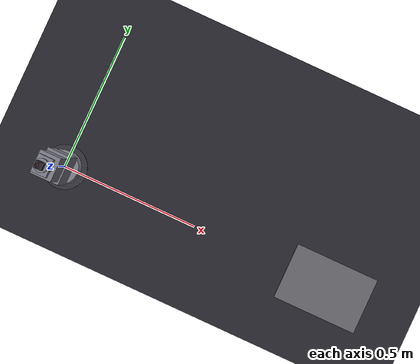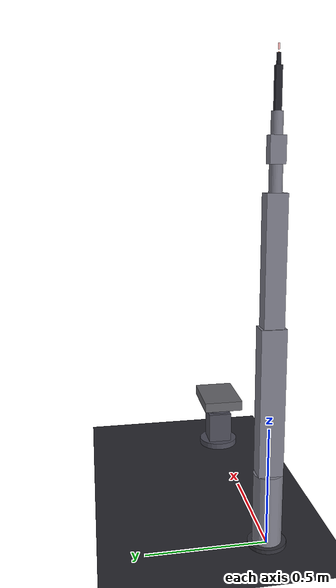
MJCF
<mujoco model="weld_robot_ido">

  <compiler angle="radian" coordinate="local"/>
  <option timestep="0.002" gravity="0 0 -9.81">
    <flag gravity="enable"/>
  </option>

  <default>
    <joint armature="0.05" damping="0.3" limited="true"/>
    <geom contype="1" conaffinity="1" condim="4" friction="0.8 0.02 0.01"/>
    <position kp="200" kv="20" forcerange="-30 30"/>
    <default class="robot_link">
      <geom type="box" rgba="0.5 0.5 0.55 1" group="1"/>
    </default>
    <default class="arm_joint">
      <joint armature="0.05" damping="0.3" limited="true"/>
    </default>
    <default class="weld_gun_link">
      <geom type="box" rgba="0.15 0.15 0.18 1" group="1"/>
    </default>
    <default class="positioner_geom">
      <geom type="box" rgba="0.35 0.35 0.40 1" group="1"/>
    </default>
    <default class="workpiece">
      <geom group="2" contype="1" conaffinity="1"/>
    </default>
    <default class="weld_seam_geom">
      <geom group="3" contype="0" conaffinity="0"/>
    </default>
  </default>

  <asset>
    <material name="mat_robot_silver"  rgba="0.5 0.5 0.55 1"/>
    <material name="mat_gun_black"    rgba="0.12 0.12 0.15 1"/>
    <material name="mat_workpiece"    rgba="0.4 0.4 0.42 1"/>
    <material name="mat_seam_blue"    rgba="0.15 0.4 0.8 0.6"/>
    <material name="mat_arc_red"      rgba="0.9 0.15 0.15 0.4"/>
    <material name="mat_positioner"   rgba="0.3 0.3 0.35 1"/>
    <material name="mat_base"         rgba="0.2 0.2 0.23 1"/>
    <material name="mat_ground"       rgba="0.15 0.15 0.18 1"/>
  </asset>

  <worldbody>
    <!-- 地面 -->
    <geom name="ground" type="plane" size="3.0 3.0 0.1" material="mat_ground"
          friction="1.0 0.05 0.02" condim="3"/>

    <!-- 灯光 -->
    <light directional="true" diffuse="0.8 0.8 0.8" pos="0 0 4" dir="0 0 -1"/>
    <light pos="1.5 -1.5 3" diffuse="0.4 0.4 0.4" dir="-0.5 0.5 -1"/>

    <!-- 相机 -->
    <camera name="overview_cam" pos="2.0 -2.0 2.5" euler="35 0 45" fovy="0.8"/>
    <camera name="weld_cam" pos="0.8 0.3 1.5" euler="60 0 30" fovy="1.2"/>

    <!-- ═════════ 六轴焊接机器人 ═════════ -->
    <body name="robot_base" pos="0 0 0">
      <!-- 基座安装板 -->
      <geom name="base_plate" type="cylinder" size="0.08 0.015" zaxis="0 0 1"
            material="mat_base" condim="3"/>

      <body name="link1" pos="0 0 0.015">
        <!-- Joint 1: Base Rotation (Z轴旋转) -->
        <joint name="joint1" type="hinge" axis="0 0 1" range="-3.14159 3.14159" class="arm_joint"/>
        <geom name="link1_geom" type="cylinder" size="0.06 0.15" zaxis="0 0 1"
              pos="0 0 0.15" material="mat_robot_silver"/>

        <body name="link2" pos="0 0 0.30">
          <!-- Joint 2: Shoulder Pitch (Y轴俯仰) -->
          <joint name="joint2" type="hinge" axis="0 1 0" range="-1.5708 1.5708" class="arm_joint"/>
          <geom name="link2_geom" type="box" size="0.04 0.05 0.30"
                pos="0 0 0.30" material="mat_robot_silver"/>

          <body name="link3" pos="0 0 0.60">
            <!-- Joint 3: Elbow Pitch (Y轴俯仰) -->
            <joint name="joint3" type="hinge" axis="0 1 0" range="-2.3562 2.3562" class="arm_joint"/>
            <geom name="link3_geom" type="box" size="0.035 0.04 0.25"
                  pos="0 0 0.25" material="mat_robot_silver"/>

            <body name="link4" pos="0 0 0.50">
              <!-- Joint 4: Wrist Rotation (Z轴旋转) -->
              <joint name="joint4" type="hinge" axis="0 0 1" range="-3.14159 3.14159" class="arm_joint"/>
              <geom name="link4_geom" type="cylinder" size="0.025 0.05" zaxis="0 0 1"
                    pos="0 0 0.05" material="mat_robot_silver"/>

              <body name="link5" pos="0 0 0.10">
                <!-- Joint 5: Wrist Pitch (Y轴俯仰) -->
                <joint name="joint5" type="hinge" axis="0 1 0" range="-1.5708 1.5708" class="arm_joint"/>
                <geom name="link5_geom" type="box" size="0.025 0.03 0.05"
                      pos="0 0 0.05" material="mat_robot_silver"/>

                <body name="link6" pos="0 0 0.10">
                  <!-- Joint 6: End Rotation (Z轴旋转) -->
                  <joint name="joint6" type="hinge" axis="0 0 1" range="-3.14159 3.14159" class="arm_joint"/>
                  <geom name="link6_geom" type="cylinder" size="0.022 0.04" zaxis="0 0 1"
                        pos="0 0 0.04" material="mat_robot_silver"/>

                  <!-- 焊枪 body (weld_gun) -->
                  <body name="weld_gun" pos="0 0 0.08">
                    <geom name="weld_gun_body" type="box" size="0.012 0.012 0.075"
                          pos="0 0 0.075" material="mat_gun_black" class="weld_gun_link"/>
                    <geom name="weld_gun_nozzle" type="cylinder" size="0.008 0.04" zaxis="0 0 1"
                          pos="0 0 0.15" material="mat_gun_black"/>

                    <!-- 焊丝尖端 site (wire_tip) -->
                    <site name="wire_tip" pos="0 0 0.19" size="0.003" rgba="1 0.3 0 0.8"/>

                    <!-- 电弧区域 (arc_cone) — 从wire_tip向下的锥形 -->
                    <geom name="arc_cone" type="cylinder" size="0.003 0.01"
                          pos="0 0 0.21" material="mat_arc_red" contype="0" conaffinity="0"/>
                  </body>
                </body>
              </body>
            </body>
          </body>
        </body>
      </body>
    </body>

    <!-- ═════════ 双轴变位机 + 工件 ═════════ -->
    <!-- 变位机底座在机器人前方1.0m处, 高度0.2m -->
    <body name="positioner_base" pos="1.0 0 0.0">
      <!-- 变位机底座 -->
      <geom name="pos_base_plate" type="cylinder" size="0.10 0.015" zaxis="0 0 1"
            pos="0 0 0.015" material="mat_positioner" condim="3"/>
      <geom name="pos_base_column" type="box" size="0.06 0.06 0.085"
            pos="0 0 0.1" material="mat_positioner"/>

      <body name="positioner_rot" pos="0 0 0.20">
        <!-- 变位机旋转轴: pos_rot_z (Z轴水平旋转) -->
        <joint name="pos_rot_z" type="hinge" axis="0 0 1" range="-3.14159 3.14159" class="arm_joint"/>
        <geom name="pos_rot_disk" type="cylinder" size="0.08 0.02" zaxis="0 0 1"
              pos="0 0 0.02" material="mat_positioner"/>

        <body name="positioner_tilt" pos="0 0 0.04">
          <!-- 变位机倾斜轴: pos_tilt_x (X轴倾斜旋转) -->
          <joint name="pos_tilt_x" type="hinge" axis="1 0 0" range="-1.5708 1.5708" class="arm_joint"/>
          <geom name="pos_tilt_frame" type="box" size="0.10 0.08 0.01"
                pos="0 0 0.01" material="mat_positioner"/>

          <!-- 工件 (workpiece) — 0.3m x 0.2m x 0.05m -->
          <body name="workpiece" pos="0 0 0.025">
            <geom name="workpiece_geom" type="box" size="0.15 0.10 0.025"
                  material="mat_workpiece" class="workpiece"
                  friction="1.2 0.05 0.02"/>

            <!-- 焊缝 (weld_seam) — 工件表面上的蓝色半透明条带 -->
            <geom name="weld_seam" type="box" size="0.10 0.0025 0.0005"
                  pos="0 0 0.026" material="mat_seam_blue" class="weld_seam_geom"/>
          </body>
        </body>
      </body>
    </body>

  </worldbody>

  <!-- 接触排除: 机器人各连杆间不自碰撞 -->
  <contact>
    <exclude body1="robot_base" body2="link1"/>
    <exclude body1="link1" body2="link2"/>
    <exclude body1="link2" body2="link3"/>
    <exclude body1="link3" body2="link4"/>
    <exclude body1="link4" body2="link5"/>
    <exclude body1="link5" body2="link6"/>
    <exclude body1="link6" body2="weld_gun"/>
    <exclude body1="positioner_base" body2="positioner_rot"/>
    <exclude body1="positioner_rot" body2="positioner_tilt"/>
    <exclude body1="positioner_tilt" body2="workpiece"/>
  </contact>

  <!-- 执行器: 6个机器人关节 + 2个变位机关节 -->
  <actuator>
    <position name="act_joint1" joint="joint1" kp="200" kv="20" forcerange="-30 30" ctrlrange="-3.14159 3.14159"/>
    <position name="act_joint2" joint="joint2" kp="200" kv="20" forcerange="-30 30" ctrlrange="-1.5708 1.5708"/>
    <position name="act_joint3" joint="joint3" kp="200" kv="20" forcerange="-30 30" ctrlrange="-2.3562 2.3562"/>
    <position name="act_joint4" joint="joint4" kp="200" kv="20" forcerange="-30 30" ctrlrange="-3.14159 3.14159"/>
    <position name="act_joint5" joint="joint5" kp="200" kv="20" forcerange="-30 30" ctrlrange="-1.5708 1.5708"/>
    <position name="act_joint6" joint="joint6" kp="200" kv="20" forcerange="-30 30" ctrlrange="-3.14159 3.14159"/>
    <position name="act_pos_rot_z" joint="pos_rot_z" kp="200" kv="20" forcerange="-30 30" ctrlrange="-3.14159 3.14159"/>
    <position name="act_pos_tilt_x" joint="pos_tilt_x" kp="200" kv="20" forcerange="-30 30" ctrlrange="-1.5708 1.5708"/>
  </actuator>

  <!-- 传感器: TCP位置/姿态, 干伸长, 关节力矩, 接触力 -->
  <sensor>
    <!-- TCP位置 (wire_tip site的世界坐标) -->
    <framepos name="tcp_pos" objtype="site" objname="wire_tip"/>
    <!-- TCP姿态 (weld_gun body的世界四元数) -->
    <framequat name="tcp_quat" objtype="body" objname="weld_gun"/>
    <!-- 干伸长: wire_tip到workpiece表面的距离 (几何计算在Python中完成) -->
    <!-- MuJoCo distance sensor 仅支持 site-site, 此处用 framepos 代替 -->
    <framepos name="workpiece_pos" objtype="body" objname="workpiece"/>
    <!-- 关节位置 (6个机器人关节) — 用于读取关节状态 -->
    <jointpos name="jp_joint1" joint="joint1"/>
    <jointpos name="jp_joint2" joint="joint2"/>
    <jointpos name="jp_joint3" joint="joint3"/>
    <jointpos name="jp_joint4" joint="joint4"/>
    <jointpos name="jp_joint5" joint="joint5"/>
    <jointpos name="jp_joint6" joint="joint6"/>
    <!-- 关节速度 (6个机器人关节) -->
    <jointvel name="jv_joint1" joint="joint1"/>
    <jointvel name="jv_joint2" joint="joint2"/>
    <jointvel name="jv_joint3" joint="joint3"/>
    <jointvel name="jv_joint4" joint="joint4"/>
    <jointvel name="jv_joint5" joint="joint5"/>
    <jointvel name="jv_joint6" joint="joint6"/>
    <!-- 执行器力 (用于力矩监测) -->
    <actuatorfrc name="af_joint1" actuator="act_joint1"/>
    <actuatorfrc name="af_joint2" actuator="act_joint2"/>
    <actuatorfrc name="af_joint3" actuator="act_joint3"/>
    <actuatorfrc name="af_joint4" actuator="act_joint4"/>
    <actuatorfrc name="af_joint5" actuator="act_joint5"/>
    <actuatorfrc name="af_joint6" actuator="act_joint6"/>
    <!-- 焊枪body的力传感器 (通过site) -->
    <force name="cf_weld_gun" site="wire_tip"/>
  </sensor>

  <!-- 4种焊接姿态关键帧 (keyframe) -->
  <!-- joint5=0.95 → TCP z≈0.328, stickout≈38mm (余量充足, 重力下沉降~10mm) -->
  <keyframe>
    <!-- flat: 平焊 — TCP在工件上方, 变位机水平 -->
    <key name="flat" qpos="0 0.5 1.35 0 0.95 0 0 0"/>
    <!-- horizontal: 横焊 — 变位机倾斜45° -->
    <key name="horizontal" qpos="0 0.5 1.35 0 0.95 0 0 0.7854"/>
    <!-- vertical: 立焊 — 变位机倾斜90° -->
    <key name="vertical" qpos="0 0.5 1.35 0 0.95 0 0 1.5708"/>
    <!-- overhead: 仰焊 — 变位机倾斜-45° -->
    <key name="overhead" qpos="0 0.5 1.35 0 0.95 0 0 -0.7854"/>
  </keyframe>

</mujoco>
